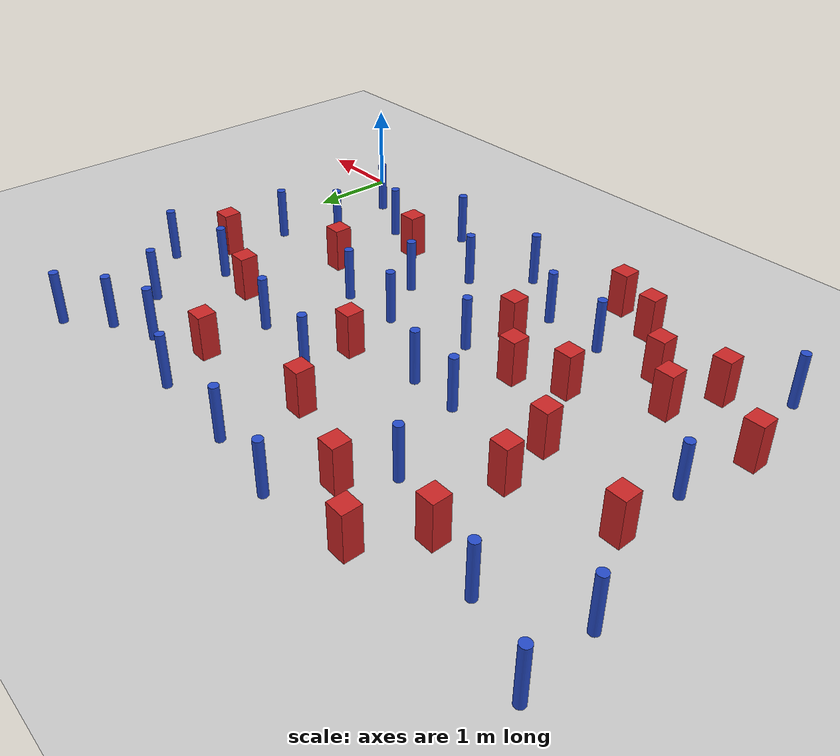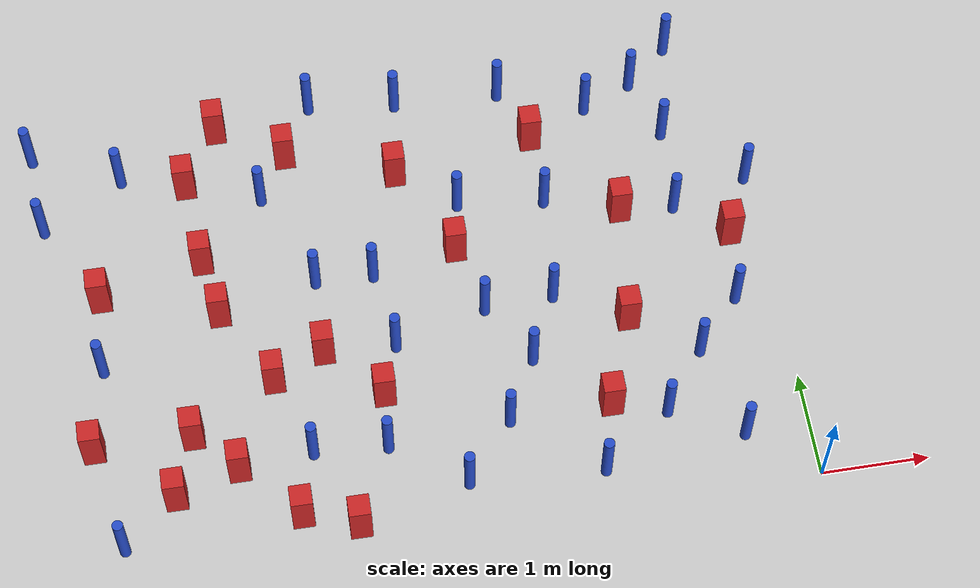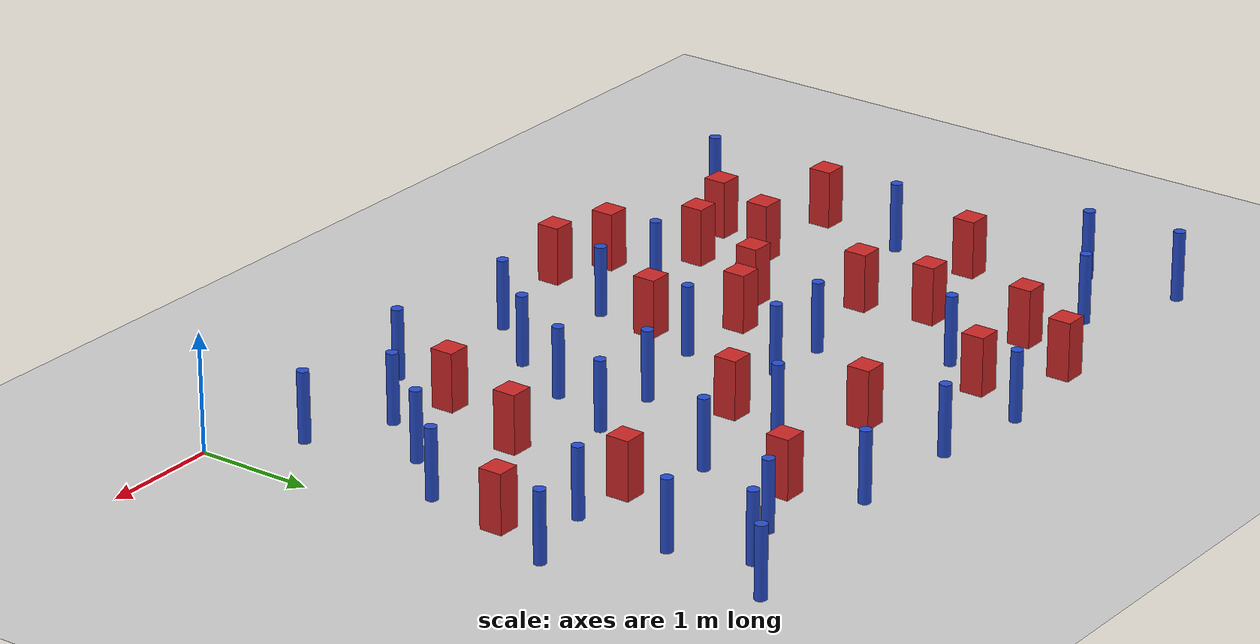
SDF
<sdf version="1.6">
 <world name="default">
  <model name="ground_plane">
   <static>1</static>
   <link name="link">
    <collision name="collision">
     <geometry><plane><normal>0 0 1</normal><size>100 100</size></plane></geometry>
     <surface><friction><ode><mu>100</mu><mu2>50</mu2></ode></friction></surface>
    </collision>
    <visual name="visual">
     <cast_shadows>0</cast_shadows>
     <geometry><plane><normal>0 0 1</normal><size>100 100</size></plane></geometry>
     <material>
      <ambient>1.0 1.0 1.0 1.0</ambient>
      <diffuse>0.8 0.8 0.8 1.0</diffuse>
      <specular>0.01 0.01 0.01 1.000000</specular>
     </material>
    </visual>
   </link>
  </model>
  <model name="square_post_obstacle2">
   <static>true</static>
   <pose>-3.41473660765 3.73516218627 1.91545236811e-07 -7.35059704564e-06 1.12565212e-07 2.39332434364e-05</pose>
   <link name="link">
    <pose>0 0 0.25 0 -0 0</pose>
    <inertial>
     <mass>100</mass>
     <inertia>
      <ixx>0.166667</ixx>
      <ixy>0</ixy>
      <ixz>0</ixz>
      <iyy>0.166667</iyy>
      <iyz>0</iyz>
      <izz>0.166667</izz>
     </inertia>
    </inertial>
    <collision name="collision"><geometry><box><size>.2 .2 .5</size></box></geometry></collision>
    <visual name="visual">
     <geometry><box><size>.2 .2 .5</size></box></geometry>
     <material>
      <script><name>Gazebo/Red</name><uri>file://media/materials/scripts/gazebo.material</uri></script>
     </material>
    </visual>
   </link>
  </model>
  <model name="square_post_obstacle6">
   <static>true</static>
   <pose>-1.46319063719 1.82636005905 1.91545236811e-07 -7.35059704564e-06 1.12565212e-07 2.39332434364e-05</pose>
   <link name="link">
    <pose>0 0 0.25 0 -0 0</pose>
    <inertial>
     <mass>100</mass>
     <inertia>
      <ixx>0.166667</ixx>
      <ixy>0</ixy>
      <ixz>0</ixz>
      <iyy>0.166667</iyy>
      <iyz>0</iyz>
      <izz>0.166667</izz>
     </inertia>
    </inertial>
    <collision name="collision"><geometry><box><size>.2 .2 .5</size></box></geometry></collision>
    <visual name="visual">
     <geometry><box><size>.2 .2 .5</size></box></geometry>
     <material>
      <script><name>Gazebo/Red</name><uri>file://media/materials/scripts/gazebo.material</uri></script>
     </material>
    </visual>
   </link>
  </model>
  <model name="pole_obstacle12">
   <static>true</static>
   <pose>-2.02660401099 3.21819011499 7.38925637345e-09 -8.47170692793e-08 1.24976764444e-08 -1.74513093039e-07</pose>
   <link name="link">
    <pose>0 0 0.3 0 -0 0</pose>
    <inertial>
     <mass>1</mass>
     <inertia><ixx>0.145833</ixx><ixy>0</ixy><ixz>0</ixz><iyy>0.145833</iyy><iyz>0</iyz><izz>0.125</izz></inertia>
    </inertial>
    <collision name="collision">
     <geometry><cylinder><radius>0.05</radius><length>.6</length></cylinder></geometry>
    </collision>
    <visual name="visual">
     <geometry><cylinder><radius>0.05</radius><length>.6</length></cylinder></geometry>
     <material>
      <script><name>Gazebo/Blue</name><uri>file://media/materials/scripts/gazebo.material</uri></script>
     </material>
    </visual>
   </link>
  </model>
  <model name="pole_obstacle16">
   <static>true</static>
   <pose>-2.77548789486 2.13338144986 7.38925637345e-09 -8.47170692798e-08 1.24976764939e-08 -1.74513093025e-07</pose>
   <link name="link">
    <pose>0 0 0.3 0 -0 0</pose>
    <inertial>
     <mass>1</mass>
     <inertia><ixx>0.145833</ixx><ixy>0</ixy><ixz>0</ixz><iyy>0.145833</iyy><iyz>0</iyz><izz>0.125</izz></inertia>
    </inertial>
    <collision name="collision">
     <geometry><cylinder><radius>0.05</radius><length>.6</length></cylinder></geometry>
    </collision>
    <visual name="visual">
     <geometry><cylinder><radius>0.05</radius><length>.6</length></cylinder></geometry>
     <material>
      <script><name>Gazebo/Blue</name><uri>file://media/materials/scripts/gazebo.material</uri></script>
     </material>
    </visual>
   </link>
  </model>
  <model name="pole_obstacle17">
   <static>true</static>
   <pose>-0.0524319184626 3.18661917495 7.38925637345e-09 -8.47170692793e-08 1.24976764354e-08 -1.74513093044e-07</pose>
   <link name="link">
    <pose>0 0 0.3 0 -0 0</pose>
    <inertial>
     <mass>1</mass>
     <inertia><ixx>0.145833</ixx><ixy>0</ixy><ixz>0</ixz><iyy>0.145833</iyy><iyz>0</iyz><izz>0.125</izz></inertia>
    </inertial>
    <collision name="collision">
     <geometry><cylinder><radius>0.05</radius><length>.6</length></cylinder></geometry>
    </collision>
    <visual name="visual">
     <geometry><cylinder><radius>0.05</radius><length>.6</length></cylinder></geometry>
     <material>
      <script><name>Gazebo/Blue</name><uri>file://media/materials/scripts/gazebo.material</uri></script>
     </material>
    </visual>
   </link>
  </model>
  <model name="pole_obstacle23">
   <static>true</static>
   <pose>-4.15042063589 4.63931284814 7.38925637345e-09 -8.47170692796e-08 1.24976764786e-08 -1.74513093032e-07</pose>
   <link name="link">
    <pose>0 0 0.3 0 -0 0</pose>
    <inertial>
     <mass>1</mass>
     <inertia><ixx>0.145833</ixx><ixy>0</ixy><ixz>0</ixz><iyy>0.145833</iyy><iyz>0</iyz><izz>0.125</izz></inertia>
    </inertial>
    <collision name="collision">
     <geometry><cylinder><radius>0.05</radius><length>.6</length></cylinder></geometry>
    </collision>
    <visual name="visual">
     <geometry><cylinder><radius>0.05</radius><length>.6</length></cylinder></geometry>
     <material>
      <script><name>Gazebo/Blue</name><uri>file://media/materials/scripts/gazebo.material</uri></script>
     </material>
    </visual>
   </link>
  </model>
  <model name="pole_obstacle28">
   <static>true</static>
   <pose>-0.611011244986 0.483389657174 7.38925637345e-09 -8.471706928e-08 1.24976765086e-08 -1.74513093015e-07</pose>
   <link name="link">
    <pose>0 0 0.3 0 -0 0</pose>
    <inertial>
     <mass>1</mass>
     <inertia><ixx>0.145833</ixx><ixy>0</ixy><ixz>0</ixz><iyy>0.145833</iyy><iyz>0</iyz><izz>0.125</izz></inertia>
    </inertial>
    <collision name="collision">
     <geometry><cylinder><radius>0.05</radius><length>.6</length></cylinder></geometry>
    </collision>
    <visual name="visual">
     <geometry><cylinder><radius>0.05</radius><length>.6</length></cylinder></geometry>
     <material>
      <script><name>Gazebo/Blue</name><uri>file://media/materials/scripts/gazebo.material</uri></script>
     </material>
    </visual>
   </link>
  </model>
  <model name="square_post_obstacle19">
   <static>true</static>
   <pose>-5.25416328744 2.44784913919 1.91545236811e-07 -7.35059704564e-06 1.12565212e-07 2.39332434364e-05</pose>
   <link name="link">
    <pose>0 0 0.25 0 -0 0</pose>
    <inertial>
     <mass>100</mass>
     <inertia>
      <ixx>0.166667</ixx>
      <ixy>0</ixy>
      <ixz>0</ixz>
      <iyy>0.166667</iyy>
      <iyz>0</iyz>
      <izz>0.166667</izz>
     </inertia>
    </inertial>
    <collision name="collision"><geometry><box><size>.2 .2 .5</size></box></geometry></collision>
    <visual name="visual">
     <geometry><box><size>.2 .2 .5</size></box></geometry>
     <material>
      <script><name>Gazebo/Red</name><uri>file://media/materials/scripts/gazebo.material</uri></script>
     </material>
    </visual>
   </link>
  </model>
  <model name="square_post_obstacle34">
   <static>true</static>
   <pose>-4.33500353921 1.90270473413 1.91545236811e-07 -7.35059704564e-06 1.12565212e-07 2.39332434364e-05</pose>
   <link name="link">
    <pose>0 0 0.25 0 -0 0</pose>
    <inertial>
     <mass>100</mass>
     <inertia>
      <ixx>0.166667</ixx>
      <ixy>0</ixy>
      <ixz>0</ixz>
      <iyy>0.166667</iyy>
      <iyz>0</iyz>
      <izz>0.166667</izz>
     </inertia>
    </inertial>
    <collision name="collision"><geometry><box><size>.2 .2 .5</size></box></geometry></collision>
    <visual name="visual">
     <geometry><box><size>.2 .2 .5</size></box></geometry>
     <material>
      <script><name>Gazebo/Red</name><uri>file://media/materials/scripts/gazebo.material</uri></script>
     </material>
    </visual>
   </link>
  </model>
  <model name="pole_obstacle45">
   <static>true</static>
   <pose>-3.30455942919 4.5422012948 7.38925637345e-09 -8.47170692798e-08 1.24976765033e-08 -1.74513093019e-07</pose>
   <link name="link">
    <pose>0 0 0.3 0 -0 0</pose>
    <inertial>
     <mass>1</mass>
     <inertia><ixx>0.145833</ixx><ixy>0</ixy><ixz>0</ixz><iyy>0.145833</iyy><iyz>0</iyz><izz>0.125</izz></inertia>
    </inertial>
    <collision name="collision">
     <geometry><cylinder><radius>0.05</radius><length>.6</length></cylinder></geometry>
    </collision>
    <visual name="visual">
     <geometry><cylinder><radius>0.05</radius><length>.6</length></cylinder></geometry>
     <material>
      <script><name>Gazebo/Blue</name><uri>file://media/materials/scripts/gazebo.material</uri></script>
     </material>
    </visual>
   </link>
  </model>
  <model name="pole_obstacle46">
   <static>true</static>
   <pose>-0.410482539193 1.89292280035 7.38925637345e-09 -8.47170692798e-08 1.24976765025e-08 -1.74513093018e-07</pose>
   <link name="link">
    <pose>0 0 0.3 0 -0 0</pose>
    <inertial>
     <mass>1</mass>
     <inertia><ixx>0.145833</ixx><ixy>0</ixy><ixz>0</ixz><iyy>0.145833</iyy><iyz>0</iyz><izz>0.125</izz></inertia>
    </inertial>
    <collision name="collision">
     <geometry><cylinder><radius>0.05</radius><length>.6</length></cylinder></geometry>
    </collision>
    <visual name="visual">
     <geometry><cylinder><radius>0.05</radius><length>.6</length></cylinder></geometry>
     <material>
      <script><name>Gazebo/Blue</name><uri>file://media/materials/scripts/gazebo.material</uri></script>
     </material>
    </visual>
   </link>
  </model>
  <model name="pole_obstacle48">
   <static>true</static>
   <pose>-3.86833347887 0.851563170756 7.38925637345e-09 -8.47170692796e-08 1.24976764768e-08 -1.74513093035e-07</pose>
   <link name="link">
    <pose>0 0 0.3 0 -0 0</pose>
    <inertial>
     <mass>1</mass>
     <inertia><ixx>0.145833</ixx><ixy>0</ixy><ixz>0</ixz><iyy>0.145833</iyy><iyz>0</iyz><izz>0.125</izz></inertia>
    </inertial>
    <collision name="collision">
     <geometry><cylinder><radius>0.05</radius><length>.6</length></cylinder></geometry>
    </collision>
    <visual name="visual">
     <geometry><cylinder><radius>0.05</radius><length>.6</length></cylinder></geometry>
     <material>
      <script><name>Gazebo/Blue</name><uri>file://media/materials/scripts/gazebo.material</uri></script>
     </material>
    </visual>
   </link>
  </model>
  <model name="pole_obstacle50">
   <static>true</static>
   <pose>-1.27181911569 0.817576813988 7.38925637345e-09 -8.47170692799e-08 1.24976765075e-08 -1.74513093017e-07</pose>
   <link name="link">
    <pose>0 0 0.3 0 -0 0</pose>
    <inertial>
     <mass>1</mass>
     <inertia><ixx>0.145833</ixx><ixy>0</ixy><ixz>0</ixz><iyy>0.145833</iyy><iyz>0</iyz><izz>0.125</izz></inertia>
    </inertial>
    <collision name="collision">
     <geometry><cylinder><radius>0.05</radius><length>.6</length></cylinder></geometry>
    </collision>
    <visual name="visual">
     <geometry><cylinder><radius>0.05</radius><length>.6</length></cylinder></geometry>
     <material>
      <script><name>Gazebo/Blue</name><uri>file://media/materials/scripts/gazebo.material</uri></script>
     </material>
    </visual>
   </link>
  </model>
  <model name="pole_obstacle53">
   <static>true</static>
   <pose>-4.31848763973 2.6662300527 7.38925637345e-09 -8.47170692798e-08 1.24976764937e-08 -1.74513093023e-07</pose>
   <link name="link">
    <pose>0 0 0.3 0 -0 0</pose>
    <inertial>
     <mass>1</mass>
     <inertia><ixx>0.145833</ixx><ixy>0</ixy><ixz>0</ixz><iyy>0.145833</iyy><iyz>0</iyz><izz>0.125</izz></inertia>
    </inertial>
    <collision name="collision">
     <geometry><cylinder><radius>0.05</radius><length>.6</length></cylinder></geometry>
    </collision>
    <visual name="visual">
     <geometry><cylinder><radius>0.05</radius><length>.6</length></cylinder></geometry>
     <material>
      <script><name>Gazebo/Blue</name><uri>file://media/materials/scripts/gazebo.material</uri></script>
     </material>
    </visual>
   </link>
  </model>
  <model name="pole_obstacle57">
   <static>true</static>
   <pose>-6.05550260306 4.07278899271 7.38925637345e-09 -8.47170692796e-08 1.24976764786e-08 -1.74513093032e-07</pose>
   <link name="link">
    <pose>0 0 0.3 0 -0 0</pose>
    <inertial>
     <mass>1</mass>
     <inertia><ixx>0.145833</ixx><ixy>0</ixy><ixz>0</ixz><iyy>0.145833</iyy><iyz>0</iyz><izz>0.125</izz></inertia>
    </inertial>
    <collision name="collision">
     <geometry><cylinder><radius>0.05</radius><length>.6</length></cylinder></geometry>
    </collision>
    <visual name="visual">
     <geometry><cylinder><radius>0.05</radius><length>.6</length></cylinder></geometry>
     <material>
      <script><name>Gazebo/Blue</name><uri>file://media/materials/scripts/gazebo.material</uri></script>
     </material>
    </visual>
   </link>
  </model>
  <model name="pole_obstacle59">
   <static>true</static>
   <pose>-0.539999370161 4.80123402371 7.38925637345e-09 -8.471706928e-08 1.24976765117e-08 -1.74513093013e-07</pose>
   <link name="link">
    <pose>0 0 0.3 0 -0 0</pose>
    <inertial>
     <mass>1</mass>
     <inertia><ixx>0.145833</ixx><ixy>0</ixy><ixz>0</ixz><iyy>0.145833</iyy><iyz>0</iyz><izz>0.125</izz></inertia>
    </inertial>
    <collision name="collision">
     <geometry><cylinder><radius>0.05</radius><length>.6</length></cylinder></geometry>
    </collision>
    <visual name="visual">
     <geometry><cylinder><radius>0.05</radius><length>.6</length></cylinder></geometry>
     <material>
      <script><name>Gazebo/Blue</name><uri>file://media/materials/scripts/gazebo.material</uri></script>
     </material>
    </visual>
   </link>
  </model>
  <model name="pole_obstacle65">
   <static>true</static>
   <pose>-2.85992273783 3.30873866163 7.38925637345e-09 -8.47170692798e-08 1.24976764939e-08 -1.74513093025e-07</pose>
   <link name="link">
    <pose>0 0 0.3 0 -0 0</pose>
    <inertial>
     <mass>1</mass>
     <inertia><ixx>0.145833</ixx><ixy>0</ixy><ixz>0</ixz><iyy>0.145833</iyy><iyz>0</iyz><izz>0.125</izz></inertia>
    </inertial>
    <collision name="collision">
     <geometry><cylinder><radius>0.05</radius><length>.6</length></cylinder></geometry>
    </collision>
    <visual name="visual">
     <geometry><cylinder><radius>0.05</radius><length>.6</length></cylinder></geometry>
     <material>
      <script><name>Gazebo/Blue</name><uri>file://media/materials/scripts/gazebo.material</uri></script>
     </material>
    </visual>
   </link>
  </model>
  <model name="pole_obstacle70">
   <static>true</static>
   <pose>-2.41334457925 1.54008122221 7.38925637345e-09 -8.471706928e-08 1.24976765152e-08 -1.74513093012e-07</pose>
   <link name="link">
    <pose>0 0 0.3 0 -0 0</pose>
    <inertial>
     <mass>1</mass>
     <inertia><ixx>0.145833</ixx><ixy>0</ixy><ixz>0</ixz><iyy>0.145833</iyy><iyz>0</iyz><izz>0.125</izz></inertia>
    </inertial>
    <collision name="collision">
     <geometry><cylinder><radius>0.05</radius><length>.6</length></cylinder></geometry>
    </collision>
    <visual name="visual">
     <geometry><cylinder><radius>0.05</radius><length>.6</length></cylinder></geometry>
     <material>
      <script><name>Gazebo/Blue</name><uri>file://media/materials/scripts/gazebo.material</uri></script>
     </material>
    </visual>
   </link>
  </model>
  <model name="square_post_obstacle63">
   <static>true</static>
   <pose>-1.77637620042 0.968911940885 1.91545236811e-07 -7.35059704564e-06 1.12565212e-07 2.39332434364e-05</pose>
   <link name="link">
    <pose>0 0 0.25 0 -0 0</pose>
    <inertial>
     <mass>100</mass>
     <inertia>
      <ixx>0.166667</ixx>
      <ixy>0</ixy>
      <ixz>0</ixz>
      <iyy>0.166667</iyy>
      <iyz>0</iyz>
      <izz>0.166667</izz>
     </inertia>
    </inertial>
    <collision name="collision"><geometry><box><size>.2 .2 .5</size></box></geometry></collision>
    <visual name="visual">
     <geometry><box><size>.2 .2 .5</size></box></geometry>
     <material>
      <script><name>Gazebo/Red</name><uri>file://media/materials/scripts/gazebo.material</uri></script>
     </material>
    </visual>
   </link>
  </model>
  <model name="pole_obstacle75">
   <static>true</static>
   <pose>-4.72924825147 3.6591480566 7.38925637345e-09 -8.47170692798e-08 1.24976764937e-08 -1.74513093023e-07</pose>
   <link name="link">
    <pose>0 0 0.3 0 -0 0</pose>
    <inertial>
     <mass>1</mass>
     <inertia><ixx>0.145833</ixx><ixy>0</ixy><ixz>0</ixz><iyy>0.145833</iyy><iyz>0</iyz><izz>0.125</izz></inertia>
    </inertial>
    <collision name="collision">
     <geometry><cylinder><radius>0.05</radius><length>.6</length></cylinder></geometry>
    </collision>
    <visual name="visual">
     <geometry><cylinder><radius>0.05</radius><length>.6</length></cylinder></geometry>
     <material>
      <script><name>Gazebo/Blue</name><uri>file://media/materials/scripts/gazebo.material</uri></script>
     </material>
    </visual>
   </link>
  </model>
  <model name="square_post_obstacle65">
   <static>true</static>
   <pose>-5.36127132777 3.03673361721 1.91545236811e-07 -7.35059704564e-06 1.12565212e-07 2.39332434364e-05</pose>
   <link name="link">
    <pose>0 0 0.25 0 -0 0</pose>
    <inertial>
     <mass>100</mass>
     <inertia>
      <ixx>0.166667</ixx>
      <ixy>0</ixy>
      <ixz>0</ixz>
      <iyy>0.166667</iyy>
      <iyz>0</iyz>
      <izz>0.166667</izz>
     </inertia>
    </inertial>
    <collision name="collision"><geometry><box><size>.2 .2 .5</size></box></geometry></collision>
    <visual name="visual">
     <geometry><box><size>.2 .2 .5</size></box></geometry>
     <material>
      <script><name>Gazebo/Red</name><uri>file://media/materials/scripts/gazebo.material</uri></script>
     </material>
    </visual>
   </link>
  </model>
  <model name="square_post_obstacle68">
   <static>true</static>
   <pose>-4.7219483437 0.291479830614 1.91545236811e-07 -7.35059704564e-06 1.12565212e-07 2.39332434364e-05</pose>
   <link name="link">
    <pose>0 0 0.25 0 -0 0</pose>
    <inertial>
     <mass>100</mass>
     <inertia>
      <ixx>0.166667</ixx>
      <ixy>0</ixy>
      <ixz>0</ixz>
      <iyy>0.166667</iyy>
      <iyz>0</iyz>
      <izz>0.166667</izz>
     </inertia>
    </inertial>
    <collision name="collision"><geometry><box><size>.2 .2 .5</size></box></geometry></collision>
    <visual name="visual">
     <geometry><box><size>.2 .2 .5</size></box></geometry>
     <material>
      <script><name>Gazebo/Red</name><uri>file://media/materials/scripts/gazebo.material</uri></script>
     </material>
    </visual>
   </link>
  </model>
  <model name="square_post_obstacle72">
   <static>true</static>
   <pose>-0.326664556857 2.59058829305 1.91545236811e-07 -7.35059704564e-06 1.12565212e-07 2.39332434364e-05</pose>
   <link name="link">
    <pose>0 0 0.25 0 -0 0</pose>
    <inertial>
     <mass>100</mass>
     <inertia>
      <ixx>0.166667</ixx>
      <ixy>0</ixy>
      <ixz>0</ixz>
      <iyy>0.166667</iyy>
      <iyz>0</iyz>
      <izz>0.166667</izz>
     </inertia>
    </inertial>
    <collision name="collision"><geometry><box><size>.2 .2 .5</size></box></geometry></collision>
    <visual name="visual">
     <geometry><box><size>.2 .2 .5</size></box></geometry>
     <material>
      <script><name>Gazebo/Red</name><uri>file://media/materials/scripts/gazebo.material</uri></script>
     </material>
    </visual>
   </link>
  </model>
  <model name="pole_obstacle86">
   <static>true</static>
   <pose>-3.19045051508 0.383018479846 7.38925637345e-09 -8.471706928e-08 1.24976765172e-08 -1.74513093013e-07</pose>
   <link name="link">
    <pose>0 0 0.3 0 -0 0</pose>
    <inertial>
     <mass>1</mass>
     <inertia><ixx>0.145833</ixx><ixy>0</ixy><ixz>0</ixz><iyy>0.145833</iyy><iyz>0</iyz><izz>0.125</izz></inertia>
    </inertial>
    <collision name="collision">
     <geometry><cylinder><radius>0.05</radius><length>.6</length></cylinder></geometry>
    </collision>
    <visual name="visual">
     <geometry><cylinder><radius>0.05</radius><length>.6</length></cylinder></geometry>
     <material>
      <script><name>Gazebo/Blue</name><uri>file://media/materials/scripts/gazebo.material</uri></script>
     </material>
    </visual>
   </link>
  </model>
  <model name="square_post_obstacle74">
   <static>true</static>
   <pose>-5.23833756547 0.827012394141 1.91545236811e-07 -7.35059704564e-06 1.12565212e-07 2.39332434364e-05</pose>
   <link name="link">
    <pose>0 0 0.25 0 -0 0</pose>
    <inertial>
     <mass>100</mass>
     <inertia>
      <ixx>0.166667</ixx>
      <ixy>0</ixy>
      <ixz>0</ixz>
      <iyy>0.166667</iyy>
      <iyz>0</iyz>
      <izz>0.166667</izz>
     </inertia>
    </inertial>
    <collision name="collision"><geometry><box><size>.2 .2 .5</size></box></geometry></collision>
    <visual name="visual">
     <geometry><box><size>.2 .2 .5</size></box></geometry>
     <material>
      <script><name>Gazebo/Red</name><uri>file://media/materials/scripts/gazebo.material</uri></script>
     </material>
    </visual>
   </link>
  </model>
  <model name="square_post_obstacle85">
   <static>true</static>
   <pose>-2.04956996184 3.94376515145 1.91545236811e-07 -7.35059704564e-06 1.12565212e-07 2.39332434364e-05</pose>
   <link name="link">
    <pose>0 0 0.25 0 -0 0</pose>
    <inertial>
     <mass>100</mass>
     <inertia>
      <ixx>0.166667</ixx>
      <ixy>0</ixy>
      <ixz>0</ixz>
      <iyy>0.166667</iyy>
      <iyz>0</iyz>
      <izz>0.166667</izz>
     </inertia>
    </inertial>
    <collision name="collision"><geometry><box><size>.2 .2 .5</size></box></geometry></collision>
    <visual name="visual">
     <geometry><box><size>.2 .2 .5</size></box></geometry>
     <material>
      <script><name>Gazebo/Red</name><uri>file://media/materials/scripts/gazebo.material</uri></script>
     </material>
    </visual>
   </link>
  </model>
  <model name="square_post_obstacle103">
   <static>true</static>
   <pose>-3.83280827554 1.38254619166 1.91545236811e-07 -7.35059704564e-06 1.12565212e-07 2.39332434364e-05</pose>
   <link name="link">
    <pose>0 0 0.25 0 -0 0</pose>
    <inertial>
     <mass>100</mass>
     <inertia>
      <ixx>0.166667</ixx>
      <ixy>0</ixy>
      <ixz>0</ixz>
      <iyy>0.166667</iyy>
      <iyz>0</iyz>
      <izz>0.166667</izz>
     </inertia>
    </inertial>
    <collision name="collision"><geometry><box><size>.2 .2 .5</size></box></geometry></collision>
    <visual name="visual">
     <geometry><box><size>.2 .2 .5</size></box></geometry>
     <material>
      <script><name>Gazebo/Red</name><uri>file://media/materials/scripts/gazebo.material</uri></script>
     </material>
    </visual>
   </link>
  </model>
  <model name="square_post_obstacle112">
   <static>true</static>
   <pose>-5.62240151995 1.21356366196 1.91545236811e-07 -7.35059704564e-06 1.12565212e-07 2.39332434364e-05</pose>
   <link name="link">
    <pose>0 0 0.25 0 -0 0</pose>
    <inertial>
     <mass>100</mass>
     <inertia>
      <ixx>0.166667</ixx>
      <ixy>0</ixy>
      <ixz>0</ixz>
      <iyy>0.166667</iyy>
      <iyz>0</iyz>
      <izz>0.166667</izz>
     </inertia>
    </inertial>
    <collision name="collision"><geometry><box><size>.2 .2 .5</size></box></geometry></collision>
    <visual name="visual">
     <geometry><box><size>.2 .2 .5</size></box></geometry>
     <material>
      <script><name>Gazebo/Red</name><uri>file://media/materials/scripts/gazebo.material</uri></script>
     </material>
    </visual>
   </link>
  </model>
  <model name="square_post_obstacle120">
   <static>true</static>
   <pose>-4.82688838443 1.67402014898 1.91545236811e-07 -7.35059704564e-06 1.12565212e-07 2.39332434364e-05</pose>
   <link name="link">
    <pose>0 0 0.25 0 -0 0</pose>
    <inertial>
     <mass>100</mass>
     <inertia>
      <ixx>0.166667</ixx>
      <ixy>0</ixy>
      <ixz>0</ixz>
      <iyy>0.166667</iyy>
      <iyz>0</iyz>
      <izz>0.166667</izz>
     </inertia>
    </inertial>
    <collision name="collision"><geometry><box><size>.2 .2 .5</size></box></geometry></collision>
    <visual name="visual">
     <geometry><box><size>.2 .2 .5</size></box></geometry>
     <material>
      <script><name>Gazebo/Red</name><uri>file://media/materials/scripts/gazebo.material</uri></script>
     </material>
    </visual>
   </link>
  </model>
  <model name="pole_obstacle119">
   <static>true</static>
   <pose>-3.76668848717 2.65164481856 7.38925637345e-09 -8.47170692798e-08 1.24976764939e-08 -1.74513093025e-07</pose>
   <link name="link">
    <pose>0 0 0.3 0 -0 0</pose>
    <inertial>
     <mass>1</mass>
     <inertia><ixx>0.145833</ixx><ixy>0</ixy><ixz>0</ixz><iyy>0.145833</iyy><iyz>0</iyz><izz>0.125</izz></inertia>
    </inertial>
    <collision name="collision">
     <geometry><cylinder><radius>0.05</radius><length>.6</length></cylinder></geometry>
    </collision>
    <visual name="visual">
     <geometry><cylinder><radius>0.05</radius><length>.6</length></cylinder></geometry>
     <material>
      <script><name>Gazebo/Blue</name><uri>file://media/materials/scripts/gazebo.material</uri></script>
     </material>
    </visual>
   </link>
  </model>
  <model name="pole_obstacle125">
   <static>true</static>
   <pose>-2.11682900525 2.17254090409 7.38925637345e-09 -8.47170692798e-08 1.24976764939e-08 -1.74513093025e-07</pose>
   <link name="link">
    <pose>0 0 0.3 0 -0 0</pose>
    <inertial>
     <mass>1</mass>
     <inertia><ixx>0.145833</ixx><ixy>0</ixy><ixz>0</ixz><iyy>0.145833</iyy><iyz>0</iyz><izz>0.125</izz></inertia>
    </inertial>
    <collision name="collision">
     <geometry><cylinder><radius>0.05</radius><length>.6</length></cylinder></geometry>
    </collision>
    <visual name="visual">
     <geometry><cylinder><radius>0.05</radius><length>.6</length></cylinder></geometry>
     <material>
      <script><name>Gazebo/Blue</name><uri>file://media/materials/scripts/gazebo.material</uri></script>
     </material>
    </visual>
   </link>
  </model>
  <model name="pole_obstacle132">
   <static>true</static>
   <pose>-6.33639041379 0.203563522754 7.38925637345e-09 -8.471706928e-08 1.24976765136e-08 -1.74513093014e-07</pose>
   <link name="link">
    <pose>0 0 0.3 0 -0 0</pose>
    <inertial>
     <mass>1</mass>
     <inertia><ixx>0.145833</ixx><ixy>0</ixy><ixz>0</ixz><iyy>0.145833</iyy><iyz>0</iyz><izz>0.125</izz></inertia>
    </inertial>
    <collision name="collision">
     <geometry><cylinder><radius>0.05</radius><length>.6</length></cylinder></geometry>
    </collision>
    <visual name="visual">
     <geometry><cylinder><radius>0.05</radius><length>.6</length></cylinder></geometry>
     <material>
      <script><name>Gazebo/Blue</name><uri>file://media/materials/scripts/gazebo.material</uri></script>
     </material>
    </visual>
   </link>
  </model>
  <model name="square_post_obstacle130">
   <static>true</static>
   <pose>-6.34997296346 2.77602555893 1.91545236811e-07 -7.35059704564e-06 1.12565212e-07 2.39332434364e-05</pose>
   <link name="link">
    <pose>0 0 0.25 0 -0 0</pose>
    <inertial>
     <mass>100</mass>
     <inertia>
      <ixx>0.166667</ixx>
      <ixy>0</ixy>
      <ixz>0</ixz>
      <iyy>0.166667</iyy>
      <iyz>0</iyz>
      <izz>0.166667</izz>
     </inertia>
    </inertial>
    <collision name="collision"><geometry><box><size>.2 .2 .5</size></box></geometry></collision>
    <visual name="visual">
     <geometry><box><size>.2 .2 .5</size></box></geometry>
     <material>
      <script><name>Gazebo/Red</name><uri>file://media/materials/scripts/gazebo.material</uri></script>
     </material>
    </visual>
   </link>
  </model>
  <model name="square_post_obstacle137">
   <static>true</static>
   <pose>-4.45021333238 4.10240662397 1.91545236811e-07 -7.35059704564e-06 1.12565212e-07 2.39332434364e-05</pose>
   <link name="link">
    <pose>0 0 0.25 0 -0 0</pose>
    <inertial>
     <mass>100</mass>
     <inertia>
      <ixx>0.166667</ixx>
      <ixy>0</ixy>
      <ixz>0</ixz>
      <iyy>0.166667</iyy>
      <iyz>0</iyz>
      <izz>0.166667</izz>
     </inertia>
    </inertial>
    <collision name="collision"><geometry><box><size>.2 .2 .5</size></box></geometry></collision>
    <visual name="visual">
     <geometry><box><size>.2 .2 .5</size></box></geometry>
     <material>
      <script><name>Gazebo/Red</name><uri>file://media/materials/scripts/gazebo.material</uri></script>
     </material>
    </visual>
   </link>
  </model>
  <model name="pole_obstacle141">
   <static>true</static>
   <pose>-1.93958139302 0.321002993275 7.38925637345e-09 -8.47170692799e-08 1.24976765065e-08 -1.74513093017e-07</pose>
   <link name="link">
    <pose>0 0 0.3 0 -0 0</pose>
    <inertial>
     <mass>1</mass>
     <inertia><ixx>0.145833</ixx><ixy>0</ixy><ixz>0</ixz><iyy>0.145833</iyy><iyz>0</iyz><izz>0.125</izz></inertia>
    </inertial>
    <collision name="collision">
     <geometry><cylinder><radius>0.05</radius><length>.6</length></cylinder></geometry>
    </collision>
    <visual name="visual">
     <geometry><cylinder><radius>0.05</radius><length>.6</length></cylinder></geometry>
     <material>
      <script><name>Gazebo/Blue</name><uri>file://media/materials/scripts/gazebo.material</uri></script>
     </material>
    </visual>
   </link>
  </model>
  <model name="square_post_obstacle139">
   <static>true</static>
   <pose>-5.83180811163 0.632885578671 1.91545236811e-07 -7.35059704564e-06 1.12565212e-07 2.39332434364e-05</pose>
   <link name="link">
    <pose>0 0 0.25 0 -0 0</pose>
    <inertial>
     <mass>100</mass>
     <inertia>
      <ixx>0.166667</ixx>
      <ixy>0</ixy>
      <ixz>0</ixz>
      <iyy>0.166667</iyy>
      <iyz>0</iyz>
      <izz>0.166667</izz>
     </inertia>
    </inertial>
    <collision name="collision"><geometry><box><size>.2 .2 .5</size></box></geometry></collision>
    <visual name="visual">
     <geometry><box><size>.2 .2 .5</size></box></geometry>
     <material>
      <script><name>Gazebo/Red</name><uri>file://media/materials/scripts/gazebo.material</uri></script>
     </material>
    </visual>
   </link>
  </model>
  <model name="pole_obstacle144">
   <static>true</static>
   <pose>-0.961352623374 4.43107249223 7.38925637345e-09 -8.47170692799e-08 1.2497676509e-08 -1.74513093015e-07</pose>
   <link name="link">
    <pose>0 0 0.3 0 -0 0</pose>
    <inertial>
     <mass>1</mass>
     <inertia><ixx>0.145833</ixx><ixy>0</ixy><ixz>0</ixz><iyy>0.145833</iyy><iyz>0</iyz><izz>0.125</izz></inertia>
    </inertial>
    <collision name="collision">
     <geometry><cylinder><radius>0.05</radius><length>.6</length></cylinder></geometry>
    </collision>
    <visual name="visual">
     <geometry><cylinder><radius>0.05</radius><length>.6</length></cylinder></geometry>
     <material>
      <script><name>Gazebo/Blue</name><uri>file://media/materials/scripts/gazebo.material</uri></script>
     </material>
    </visual>
   </link>
  </model>
  <model name="pole_obstacle145">
   <static>true</static>
   <pose>-6.89657685855 4.43699557625 7.38925637345e-09 -8.47170692796e-08 1.24976764786e-08 -1.74513093032e-07</pose>
   <link name="link">
    <pose>0 0 0.3 0 -0 0</pose>
    <inertial>
     <mass>1</mass>
     <inertia><ixx>0.145833</ixx><ixy>0</ixy><ixz>0</ixz><iyy>0.145833</iyy><iyz>0</iyz><izz>0.125</izz></inertia>
    </inertial>
    <collision name="collision">
     <geometry><cylinder><radius>0.05</radius><length>.6</length></cylinder></geometry>
    </collision>
    <visual name="visual">
     <geometry><cylinder><radius>0.05</radius><length>.6</length></cylinder></geometry>
     <material>
      <script><name>Gazebo/Blue</name><uri>file://media/materials/scripts/gazebo.material</uri></script>
     </material>
    </visual>
   </link>
  </model>
  <model name="square_post_obstacle141">
   <static>true</static>
   <pose>-2.95728002741 2.80995286948 1.91545236811e-07 -7.35059704564e-06 1.12565212e-07 2.39332434364e-05</pose>
   <link name="link">
    <pose>0 0 0.25 0 -0 0</pose>
    <inertial>
     <mass>100</mass>
     <inertia>
      <ixx>0.166667</ixx>
      <ixy>0</ixy>
      <ixz>0</ixz>
      <iyy>0.166667</iyy>
      <iyz>0</iyz>
      <izz>0.166667</izz>
     </inertia>
    </inertial>
    <collision name="collision"><geometry><box><size>.2 .2 .5</size></box></geometry></collision>
    <visual name="visual">
     <geometry><box><size>.2 .2 .5</size></box></geometry>
     <material>
      <script><name>Gazebo/Red</name><uri>file://media/materials/scripts/gazebo.material</uri></script>
     </material>
    </visual>
   </link>
  </model>
  <model name="pole_obstacle148">
   <static>true</static>
   <pose>-4.55383958921 0.893558696742 7.38925637345e-09 -8.47170692799e-08 1.24976765038e-08 -1.74513093018e-07</pose>
   <link name="link">
    <pose>0 0 0.3 0 -0 0</pose>
    <inertial>
     <mass>1</mass>
     <inertia><ixx>0.145833</ixx><ixy>0</ixy><ixz>0</ixz><iyy>0.145833</iyy><iyz>0</iyz><izz>0.125</izz></inertia>
    </inertial>
    <collision name="collision">
     <geometry><cylinder><radius>0.05</radius><length>.6</length></cylinder></geometry>
    </collision>
    <visual name="visual">
     <geometry><cylinder><radius>0.05</radius><length>.6</length></cylinder></geometry>
     <material>
      <script><name>Gazebo/Blue</name><uri>file://media/materials/scripts/gazebo.material</uri></script>
     </material>
    </visual>
   </link>
  </model>
  <model name="square_post_obstacle163">
   <static>true</static>
   <pose>-5.44008117784 3.90216394909 1.91545236811e-07 -7.35059704564e-06 1.12565212e-07 2.39332434364e-05</pose>
   <link name="link">
    <pose>0 0 0.25 0 -0 0</pose>
    <inertial>
     <mass>100</mass>
     <inertia>
      <ixx>0.166667</ixx>
      <ixy>0</ixy>
      <ixz>0</ixz>
      <iyy>0.166667</iyy>
      <iyz>0</iyz>
      <izz>0.166667</izz>
     </inertia>
    </inertial>
    <collision name="collision"><geometry><box><size>.2 .2 .5</size></box></geometry></collision>
    <visual name="visual">
     <geometry><box><size>.2 .2 .5</size></box></geometry>
     <material>
      <script><name>Gazebo/Red</name><uri>file://media/materials/scripts/gazebo.material</uri></script>
     </material>
    </visual>
   </link>
  </model>
  <model name="pole_obstacle167">
   <static>true</static>
   <pose>-6.8323820546 3.61901864517 7.38925637345e-09 -8.47170692798e-08 1.24976764937e-08 -1.74513093023e-07</pose>
   <link name="link">
    <pose>0 0 0.3 0 -0 0</pose>
    <inertial>
     <mass>1</mass>
     <inertia><ixx>0.145833</ixx><ixy>0</ixy><ixz>0</ixz><iyy>0.145833</iyy><iyz>0</iyz><izz>0.125</izz></inertia>
    </inertial>
    <collision name="collision">
     <geometry><cylinder><radius>0.05</radius><length>.6</length></cylinder></geometry>
    </collision>
    <visual name="visual">
     <geometry><cylinder><radius>0.05</radius><length>.6</length></cylinder></geometry>
     <material>
      <script><name>Gazebo/Blue</name><uri>file://media/materials/scripts/gazebo.material</uri></script>
     </material>
    </visual>
   </link>
  </model>
  <model name="pole_obstacle168">
   <static>true</static>
   <pose>-1.45193008311 4.21744665858 7.38925637345e-09 -8.47170692799e-08 1.24976765033e-08 -1.74513093018e-07</pose>
   <link name="link">
    <pose>0 0 0.3 0 -0 0</pose>
    <inertial>
     <mass>1</mass>
     <inertia><ixx>0.145833</ixx><ixy>0</ixy><ixz>0</ixz><iyy>0.145833</iyy><iyz>0</iyz><izz>0.125</izz></inertia>
    </inertial>
    <collision name="collision">
     <geometry><cylinder><radius>0.05</radius><length>.6</length></cylinder></geometry>
    </collision>
    <visual name="visual">
     <geometry><cylinder><radius>0.05</radius><length>.6</length></cylinder></geometry>
     <material>
      <script><name>Gazebo/Blue</name><uri>file://media/materials/scripts/gazebo.material</uri></script>
     </material>
    </visual>
   </link>
  </model>
  <model name="square_post_obstacle169">
   <static>true</static>
   <pose>-1.32794566553 3.00201375723 1.91545236811e-07 -7.35059704564e-06 1.12565212e-07 2.39332434364e-05</pose>
   <link name="link">
    <pose>0 0 0.25 0 -0 0</pose>
    <inertial>
     <mass>100</mass>
     <inertia>
      <ixx>0.166667</ixx>
      <ixy>0</ixy>
      <ixz>0</ixz>
      <iyy>0.166667</iyy>
      <iyz>0</iyz>
      <izz>0.166667</izz>
     </inertia>
    </inertial>
    <collision name="collision"><geometry><box><size>.2 .2 .5</size></box></geometry></collision>
    <visual name="visual">
     <geometry><box><size>.2 .2 .5</size></box></geometry>
     <material>
      <script><name>Gazebo/Red</name><uri>file://media/materials/scripts/gazebo.material</uri></script>
     </material>
    </visual>
   </link>
  </model>
  <model name="pole_obstacle173">
   <static>true</static>
   <pose>-3.65699122954 1.87451300852 7.38925637345e-09 -8.471706928e-08 1.24976765152e-08 -1.74513093012e-07</pose>
   <link name="link">
    <pose>0 0 0.3 0 -0 0</pose>
    <inertial>
     <mass>1</mass>
     <inertia><ixx>0.145833</ixx><ixy>0</ixy><ixz>0</ixz><iyy>0.145833</iyy><iyz>0</iyz><izz>0.125</izz></inertia>
    </inertial>
    <collision name="collision">
     <geometry><cylinder><radius>0.05</radius><length>.6</length></cylinder></geometry>
    </collision>
    <visual name="visual">
     <geometry><cylinder><radius>0.05</radius><length>.6</length></cylinder></geometry>
     <material>
      <script><name>Gazebo/Blue</name><uri>file://media/materials/scripts/gazebo.material</uri></script>
     </material>
    </visual>
   </link>
  </model>
  <model name="pole_obstacle175">
   <static>true</static>
   <pose>-0.753025647546 3.81078901325 7.38925637345e-09 -8.47170692799e-08 1.2497676509e-08 -1.74513093016e-07</pose>
   <link name="link">
    <pose>0 0 0.3 0 -0 0</pose>
    <inertial>
     <mass>1</mass>
     <inertia><ixx>0.145833</ixx><ixy>0</ixy><ixz>0</ixz><iyy>0.145833</iyy><iyz>0</iyz><izz>0.125</izz></inertia>
    </inertial>
    <collision name="collision">
     <geometry><cylinder><radius>0.05</radius><length>.6</length></cylinder></geometry>
    </collision>
    <visual name="visual">
     <geometry><cylinder><radius>0.05</radius><length>.6</length></cylinder></geometry>
     <material>
      <script><name>Gazebo/Blue</name><uri>file://media/materials/scripts/gazebo.material</uri></script>
     </material>
    </visual>
   </link>
  </model>
  <model name="pole_obstacle177">
   <static>true</static>
   <pose>-2.27907913141 4.51310924632 7.38925637345e-09 -8.47170692798e-08 1.24976765033e-08 -1.74513093019e-07</pose>
   <link name="link">
    <pose>0 0 0.3 0 -0 0</pose>
    <inertial>
     <mass>1</mass>
     <inertia><ixx>0.145833</ixx><ixy>0</ixy><ixz>0</ixz><iyy>0.145833</iyy><iyz>0</iyz><izz>0.125</izz></inertia>
    </inertial>
    <collision name="collision">
     <geometry><cylinder><radius>0.05</radius><length>.6</length></cylinder></geometry>
    </collision>
    <visual name="visual">
     <geometry><cylinder><radius>0.05</radius><length>.6</length></cylinder></geometry>
     <material>
      <script><name>Gazebo/Blue</name><uri>file://media/materials/scripts/gazebo.material</uri></script>
     </material>
    </visual>
   </link>
  </model>
  <model name="pole_obstacle180">
   <static>true</static>
   <pose>-2.7266435581 0.94105386907 7.38925637345e-09 -8.471706928e-08 1.24976765177e-08 -1.74513093012e-07</pose>
   <link name="link">
    <pose>0 0 0.3 0 -0 0</pose>
    <inertial>
     <mass>1</mass>
     <inertia><ixx>0.145833</ixx><ixy>0</ixy><ixz>0</ixz><iyy>0.145833</iyy><iyz>0</iyz><izz>0.125</izz></inertia>
    </inertial>
    <collision name="collision">
     <geometry><cylinder><radius>0.05</radius><length>.6</length></cylinder></geometry>
    </collision>
    <visual name="visual">
     <geometry><cylinder><radius>0.05</radius><length>.6</length></cylinder></geometry>
     <material>
      <script><name>Gazebo/Blue</name><uri>file://media/materials/scripts/gazebo.material</uri></script>
     </material>
    </visual>
   </link>
  </model>
  <model name="pole_obstacle182">
   <static>true</static>
   <pose>-6.38726238886 2.02343442155 7.38925637345e-09 -8.47170692799e-08 1.24976765078e-08 -1.74513093016e-07</pose>
   <link name="link">
    <pose>0 0 0.3 0 -0 0</pose>
    <inertial>
     <mass>1</mass>
     <inertia><ixx>0.145833</ixx><ixy>0</ixy><ixz>0</ixz><iyy>0.145833</iyy><iyz>0</iyz><izz>0.125</izz></inertia>
    </inertial>
    <collision name="collision">
     <geometry><cylinder><radius>0.05</radius><length>.6</length></cylinder></geometry>
    </collision>
    <visual name="visual">
     <geometry><cylinder><radius>0.05</radius><length>.6</length></cylinder></geometry>
     <material>
      <script><name>Gazebo/Blue</name><uri>file://media/materials/scripts/gazebo.material</uri></script>
     </material>
    </visual>
   </link>
  </model>
  <model name="pole_obstacle184">
   <static>true</static>
   <pose>-0.851482073606 1.39022786305 7.38925637345e-09 -8.47170692799e-08 1.24976765033e-08 -1.7451309302e-07</pose>
   <link name="link">
    <pose>0 0 0.3 0 -0 0</pose>
    <inertial>
     <mass>1</mass>
     <inertia><ixx>0.145833</ixx><ixy>0</ixy><ixz>0</ixz><iyy>0.145833</iyy><iyz>0</iyz><izz>0.125</izz></inertia>
    </inertial>
    <collision name="collision">
     <geometry><cylinder><radius>0.05</radius><length>.6</length></cylinder></geometry>
    </collision>
    <visual name="visual">
     <geometry><cylinder><radius>0.05</radius><length>.6</length></cylinder></geometry>
     <material>
      <script><name>Gazebo/Blue</name><uri>file://media/materials/scripts/gazebo.material</uri></script>
     </material>
    </visual>
   </link>
  </model>
  <model name="square_post_obstacle186">
   <static>true</static>
   <pose>-5.09036071796 4.49190140182 1.91545236811e-07 -7.35059704564e-06 1.12565212e-07 2.39332434364e-05</pose>
   <link name="link">
    <pose>0 0 0.25 0 -0 0</pose>
    <inertial>
     <mass>100</mass>
     <inertia>
      <ixx>0.166667</ixx>
      <ixy>0</ixy>
      <ixz>0</ixz>
      <iyy>0.166667</iyy>
      <iyz>0</iyz>
      <izz>0.166667</izz>
     </inertia>
    </inertial>
    <collision name="collision"><geometry><box><size>.2 .2 .5</size></box></geometry></collision>
    <visual name="visual">
     <geometry><box><size>.2 .2 .5</size></box></geometry>
     <material>
      <script><name>Gazebo/Red</name><uri>file://media/materials/scripts/gazebo.material</uri></script>
     </material>
    </visual>
   </link>
  </model>
  <model name="square_post_obstacle188">
   <static>true</static>
   <pose>-6.53374420963 1.21360693906 1.91545236811e-07 -7.35059704564e-06 1.12565212e-07 2.39332434364e-05</pose>
   <link name="link">
    <pose>0 0 0.25 0 -0 0</pose>
    <inertial>
     <mass>100</mass>
     <inertia>
      <ixx>0.166667</ixx>
      <ixy>0</ixy>
      <ixz>0</ixz>
      <iyy>0.166667</iyy>
      <iyz>0</iyz>
      <izz>0.166667</izz>
     </inertia>
    </inertial>
    <collision name="collision"><geometry><box><size>.2 .2 .5</size></box></geometry></collision>
    <visual name="visual">
     <geometry><box><size>.2 .2 .5</size></box></geometry>
     <material>
      <script><name>Gazebo/Red</name><uri>file://media/materials/scripts/gazebo.material</uri></script>
     </material>
    </visual>
   </link>
  </model>
  <model name="square_post_obstacle200">
   <static>true</static>
   <pose>-4.22326345011 0.113361224456 1.91545236811e-07 -7.35059704564e-06 1.12565212e-07 2.39332434364e-05</pose>
   <link name="link">
    <pose>0 0 0.25 0 -0 0</pose>
    <inertial>
     <mass>100</mass>
     <inertia>
      <ixx>0.166667</ixx>
      <ixy>0</ixy>
      <ixz>0</ixz>
      <iyy>0.166667</iyy>
      <iyz>0</iyz>
      <izz>0.166667</izz>
     </inertia>
    </inertial>
    <collision name="collision"><geometry><box><size>.2 .2 .5</size></box></geometry></collision>
    <visual name="visual">
     <geometry><box><size>.2 .2 .5</size></box></geometry>
     <material>
      <script><name>Gazebo/Red</name><uri>file://media/materials/scripts/gazebo.material</uri></script>
     </material>
    </visual>
   </link>
  </model>
  <model name="pole_obstacle212">
   <static>true</static>
   <pose>-0.797618248798 2.96571968948 7.38925637345e-09 -8.47170692799e-08 1.2497676509e-08 -1.74513093016e-07</pose>
   <link name="link">
    <pose>0 0 0.3 0 -0 0</pose>
    <inertial>
     <mass>1</mass>
     <inertia><ixx>0.145833</ixx><ixy>0</ixy><ixz>0</ixz><iyy>0.145833</iyy><iyz>0</iyz><izz>0.125</izz></inertia>
    </inertial>
    <collision name="collision">
     <geometry><cylinder><radius>0.05</radius><length>.6</length></cylinder></geometry>
    </collision>
    <visual name="visual">
     <geometry><cylinder><radius>0.05</radius><length>.6</length></cylinder></geometry>
     <material>
      <script><name>Gazebo/Blue</name><uri>file://media/materials/scripts/gazebo.material</uri></script>
     </material>
    </visual>
   </link>
  </model>
 </world>
</sdf>
